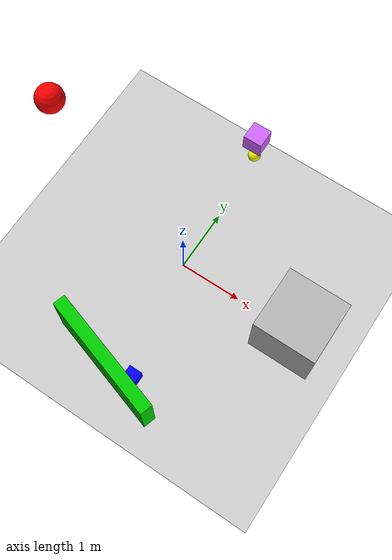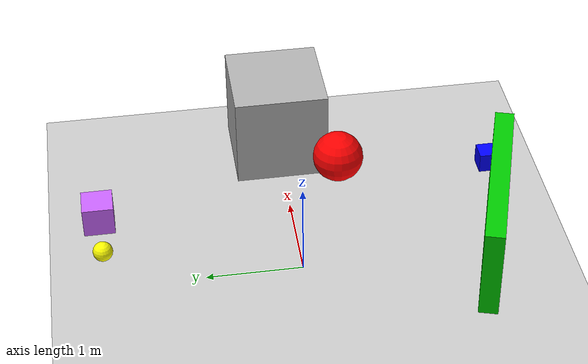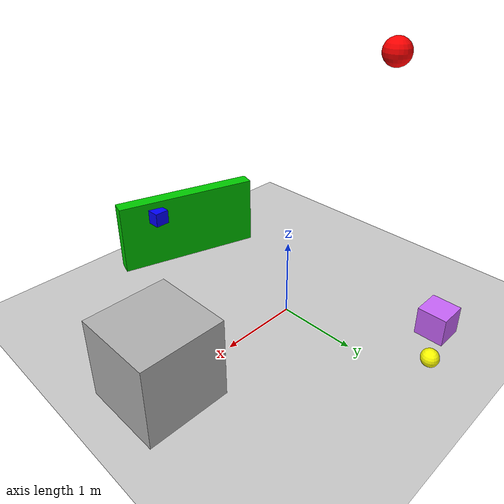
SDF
<?xml version="1.0" ?>
<sdf version="1.6">
  <world name="basic_physics_world">
    <!-- Physics engine configuration -->
    <physics type="ode">
      <max_step_size>0.001</max_step_size>
      <real_time_factor>1.0</real_time_factor>
      <real_time_update_rate>1000.0</real_time_update_rate>
      <gravity>0 0 -9.8</gravity>

      <!-- ODE solver parameters -->
      <ode>
        <solver>
          <type>quick</type>
          <iters>10</iters>
          <sor>1.3</sor>
        </solver>
        <constraints>
          <cfm>0.0</cfm>
          <erp>0.2</erp>
          <contact_max_correcting_vel>100.0</contact_max_correcting_vel>
          <contact_surface_layer>0.001</contact_surface_layer>
        </constraints>
      </ode>
    </physics>

    <!-- Lighting -->
    <light name="sun" type="directional">
      <cast_shadows>true</cast_shadows>
      <pose>0 0 10 0 0 0</pose>
      <diffuse>0.8 0.8 0.8 1</diffuse>
      <specular>0.2 0.2 0.2 1</specular>
      <attenuation>
        <range>1000</range>
        <constant>0.9</constant>
        <linear>0.01</linear>
        <quadratic>0.001</quadratic>
      </attenuation>
      <direction>-0.5 0.1 -0.9</direction>
    </light>

    <!-- Ground plane -->
    <include>
      <uri>model://ground_plane</uri>
    </include>

    <!-- Sky -->
    <scene>
      <ambient>0.4 0.4 0.4 1</ambient>
      <background>0.7 0.7 0.7 1</background>
      <shadows>true</shadows>
    </scene>

    <!-- Example objects to demonstrate physics -->

    <!-- Static box -->
    <model name="static_box">
      <pose>2 0 0.5 0 0 0</pose>
      <link name="box_link">
        <inertial>
          <mass>1.0</mass>
          <inertia>
            <ixx>0.083</ixx>
            <ixy>0</ixy>
            <ixz>0</ixz>
            <iyy>0.083</iyy>
            <iyz>0</iyz>
            <izz>0.083</izz>
          </inertia>
        </inertial>
        <visual name="visual">
          <geometry>
            <box><size>1 1 1</size></box>
          </geometry>
          <material>
            <ambient>0.5 0.5 0.5 1</ambient>
            <diffuse>0.7 0.7 0.7 1</diffuse>
            <specular>0.1 0.1 0.1 1</specular>
          </material>
        </visual>
        <collision name="collision">
          <geometry>
            <box><size>1 1 1</size></box>
          </geometry>
        </collision>
      </link>
    </model>

    <!-- Dynamic sphere that will fall due to gravity -->
    <model name="falling_sphere">
      <pose>-2 0 3 0 0 0</pose>
      <link name="sphere_link">
        <inertial>
          <mass>0.5</mass>
          <inertia>
            <ixx>0.01</ixx>
            <ixy>0</ixy>
            <ixz>0</ixz>
            <iyy>0.01</iyy>
            <iyz>0</iyz>
            <izz>0.01</izz>
          </inertia>
        </inertial>
        <visual name="visual">
          <geometry>
            <sphere><radius>0.2</radius></sphere>
          </geometry>
          <material>
            <ambient>1 0 0 1</ambient>
            <diffuse>1 0 0 1</diffuse>
            <specular>0.5 0.5 0.5 1</specular>
          </material>
        </visual>
        <collision name="collision">
          <geometry>
            <sphere><radius>0.2</radius></sphere>
          </geometry>
        </collision>
      </link>
    </model>

    <!-- Dynamic cylinder on a ramp to demonstrate sliding -->
    <model name="ramp">
      <pose>0 -2 0.5 0 0 -0.3</pose>
      <link name="ramp_link">
        <inertial>
          <mass>10.0</mass>
          <inertia>
            <ixx>1.0</ixx>
            <ixy>0</ixy>
            <ixz>0</ixz>
            <iyy>1.0</iyy>
            <iyz>0</iyz>
            <izz>1.0</izz>
          </inertia>
        </inertial>
        <visual name="visual">
          <geometry>
            <box><size>2 0.2 1</size></box>
          </geometry>
          <material>
            <ambient>0 0.5 0 1</ambient>
            <diffuse>0 0.8 0 1</diffuse>
            <specular>0.3 0.3 0.3 1</specular>
          </material>
        </visual>
        <collision name="collision">
          <geometry>
            <box><size>2 0.2 1</size></box>
          </geometry>
        </collision>
      </link>
    </model>

    <!-- A small box on the ramp that will slide down -->
    <model name="sliding_box">
      <pose>0.5 -2 0.8 0 0 0</pose>
      <link name="box_link">
        <inertial>
          <mass>0.2</mass>
          <inertia>
            <ixx>0.0067</ixx>
            <ixy>0</ixy>
            <ixz>0</ixz>
            <iyy>0.0067</iyy>
            <iyz>0</iyz>
            <izz>0.0067</izz>
          </inertia>
        </inertial>
        <visual name="visual">
          <geometry>
            <box><size>0.2 0.2 0.2</size></box>
          </geometry>
          <material>
            <ambient>0 0 1 1</ambient>
            <diffuse>0 0 1 1</diffuse>
            <specular>0.5 0.5 0.5 1</specular>
          </material>
        </visual>
        <collision name="collision">
          <geometry>
            <box><size>0.2 0.2 0.2</size></box>
          </geometry>
        </collision>
      </link>
    </model>

    <!-- A pendulum to demonstrate constraints -->
    <model name="pendulum_base">
      <pose>0 2 1 0 0 0</pose>
      <link name="base_link">
        <inertial>
          <mass>2.0</mass>
          <inertia>
            <ixx>0.1</ixx>
            <ixy>0</ixy>
            <ixz>0</ixz>
            <iyy>0.1</iyy>
            <iyz>0</iyz>
            <izz>0.1</izz>
          </inertia>
        </inertial>
        <visual name="visual">
          <geometry>
            <box><size>0.3 0.3 0.3</size></box>
          </geometry>
          <material>
            <ambient>0.5 0.2 0.8 1</ambient>
            <diffuse>0.8 0.4 1 1</diffuse>
            <specular>0.3 0.3 0.3 1</specular>
          </material>
        </visual>
        <collision name="collision">
          <geometry>
            <box><size>0.3 0.3 0.3</size></box>
          </geometry>
        </collision>
      </link>
    </model>

    <model name="pendulum_ball">
      <pose>0 2 0.5 0 0 0</pose>
      <link name="ball_link">
        <inertial>
          <mass>0.5</mass>
          <inertia>
            <ixx>0.01</ixx>
            <ixy>0</ixy>
            <ixz>0</ixz>
            <iyy>0.01</iyy>
            <iyz>0</iyz>
            <izz>0.01</izz>
          </inertia>
        </inertial>
        <visual name="visual">
          <geometry>
            <sphere><radius>0.1</radius></sphere>
          </geometry>
          <material>
            <ambient>1 1 0 1</ambient>
            <diffuse>1 1 0 1</diffuse>
            <specular>0.5 0.5 0.5 1</specular>
          </material>
        </visual>
        <collision name="collision">
          <geometry>
            <sphere><radius>0.1</radius></sphere>
          </geometry>
        </collision>
      </link>
    </model>

    <!-- Joint connecting pendulum parts -->
    <joint name="pendulum_joint" type="revolute">
      <parent>pendulum_base::base_link</parent>
      <child>pendulum_ball::ball_link</child>
      <pose>0 0 0.15 0 0 0</pose>
      <axis>
        <xyz>0 1 0</xyz>
        <limit>
          <lower>-1.57</lower>
          <upper>1.57</upper>
          <effort>100</effort>
          <velocity>1</velocity>
        </limit>
      </axis>
    </joint>

  </world>
</sdf>
